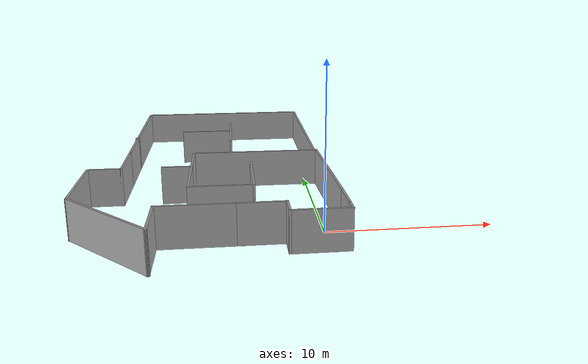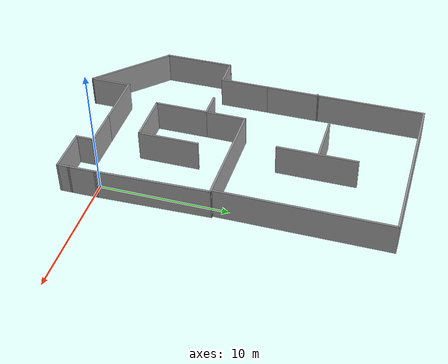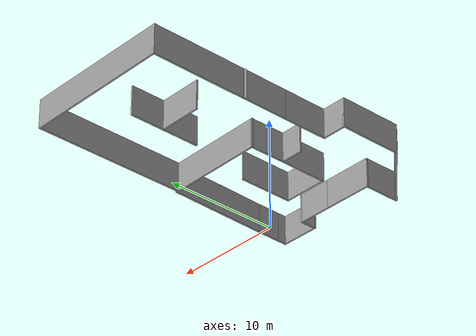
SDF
<?xml version='1.0'?>
<sdf version='1.7'>
  <model name='seminar_world'>
    <pose>-6.63188 8.85131 0 0 -0 0</pose>
    <link name='Wall_0'>
      <collision name='Wall_0_Collision'>
        <geometry>
          <box>
            <size>2.17037 0.15 2.5</size>
          </box>
        </geometry>
        <pose>0 0 1.25 0 -0 0</pose>
      </collision>
      <visual name='Wall_0_Visual'>
        <pose>0 0 1.25 0 -0 0</pose>
        <geometry>
          <box>
            <size>2.17037 0.15 2.5</size>
          </box>
        </geometry>
        <material>
          <script>
            <uri>file://media/materials/scripts/gazebo.material</uri>
            <name>Gazebo/Grey</name>
          </script>
          <ambient>1 1 1 1</ambient>
        </material>
        <meta>
          <layer>0</layer>
        </meta>
      </visual>
      <pose>7.69858 -9.62121 0 0 -0 -1.55763</pose>
    </link>
    <link name='Wall_10'>
      <collision name='Wall_10_Collision'>
        <geometry>
          <box>
            <size>2.25 0.15 2.5</size>
          </box>
        </geometry>
        <pose>0 0 1.25 0 -0 0</pose>
      </collision>
      <visual name='Wall_10_Visual'>
        <pose>0 0 1.25 0 -0 0</pose>
        <geometry>
          <box>
            <size>2.25 0.15 2.5</size>
          </box>
        </geometry>
        <material>
          <script>
            <uri>file://media/materials/scripts/gazebo.material</uri>
            <name>Gazebo/Grey</name>
          </script>
          <ambient>1 1 1 1</ambient>
        </material>
        <meta>
          <layer>0</layer>
        </meta>
      </visual>
      <pose>-6.6318 -3.03763 0 0 -0 0</pose>
    </link>
    <link name='Wall_13'>
      <collision name='Wall_13_Collision'>
        <geometry>
          <box>
            <size>2 0.15 2.5</size>
          </box>
        </geometry>
        <pose>0 0 1.25 0 -0 0</pose>
      </collision>
      <visual name='Wall_13_Visual'>
        <pose>0 0 1.25 0 -0 0</pose>
        <geometry>
          <box>
            <size>2 0.15 2.5</size>
          </box>
        </geometry>
        <material>
          <script>
            <uri>file://media/materials/scripts/gazebo.material</uri>
            <name>Gazebo/Grey</name>
          </script>
          <ambient>1 1 1 1</ambient>
        </material>
        <meta>
          <layer>0</layer>
        </meta>
      </visual>
      <pose>-2.09158 -2.99787 0 0 -0 0</pose>
    </link>
    <link name='Wall_14'>
      <collision name='Wall_14_Collision'>
        <geometry>
          <box>
            <size>3.25 0.15 2.5</size>
          </box>
        </geometry>
        <pose>0 0 1.25 0 -0 0</pose>
      </collision>
      <visual name='Wall_14_Visual'>
        <pose>0 0 1.25 0 -0 0</pose>
        <geometry>
          <box>
            <size>3.25 0.15 2.5</size>
          </box>
        </geometry>
        <material>
          <script>
            <uri>file://media/materials/scripts/gazebo.material</uri>
            <name>Gazebo/Grey</name>
          </script>
          <ambient>1 1 1 1</ambient>
        </material>
        <meta>
          <layer>0</layer>
        </meta>
      </visual>
      <pose>-1.15336 -1.44787 0 0 -0 1.56226</pose>
    </link>
    <link name='Wall_15'>
      <collision name='Wall_15_Collision'>
        <geometry>
          <box>
            <size>8.7234 0.15 2.5</size>
          </box>
        </geometry>
        <pose>0 0 1.25 0 -0 0</pose>
      </collision>
      <visual name='Wall_15_Visual'>
        <pose>0 0 1.25 0 -0 0</pose>
        <geometry>
          <box>
            <size>8.7234 0.15 2.5</size>
          </box>
        </geometry>
        <material>
          <script>
            <uri>file://media/materials/scripts/gazebo.material</uri>
            <name>Gazebo/Grey</name>
          </script>
          <ambient>1 1 1 1</ambient>
        </material>
        <meta>
          <layer>0</layer>
        </meta>
      </visual>
      <pose>3.13334 0.062229 0 0 -0 -0.009308</pose>
    </link>
    <link name='Wall_19'>
      <collision name='Wall_19_Collision'>
        <geometry>
          <box>
            <size>8.78751 0.15 2.5</size>
          </box>
        </geometry>
        <pose>0 0 1.25 0 -0 0</pose>
      </collision>
      <visual name='Wall_19_Visual'>
        <pose>0 0 1.25 0 -0 0</pose>
        <geometry>
          <box>
            <size>8.78751 0.15 2.5</size>
          </box>
        </geometry>
        <material>
          <script>
            <uri>file://media/materials/scripts/gazebo.material</uri>
            <name>Gazebo/Grey</name>
          </script>
          <ambient>1 1 1 1</ambient>
        </material>
        <meta>
          <layer>0</layer>
        </meta>
      </visual>
      <pose>7.55266 -4.26779 0 0 -0 1.60151</pose>
    </link>
    <link name='Wall_2'>
      <collision name='Wall_2_Collision'>
        <geometry>
          <box>
            <size>1 0.15 2.5</size>
          </box>
        </geometry>
        <pose>0 0 1.25 0 -0 0</pose>
      </collision>
      <visual name='Wall_2_Visual'>
        <pose>0 0 1.25 0 -0 0</pose>
        <geometry>
          <box>
            <size>1 0.15 2.5</size>
          </box>
        </geometry>
        <material>
          <script>
            <uri>file://media/materials/scripts/gazebo.material</uri>
            <name>Gazebo/Grey</name>
          </script>
          <ambient>1 1 1 1</ambient>
        </material>
        <meta>
          <layer>0</layer>
        </meta>
      </visual>
      <pose>7.71188 -11.0563 0 0 -0 -1.5708</pose>
    </link>
    <link name='Wall_21'>
      <collision name='Wall_21_Collision'>
        <geometry>
          <box>
            <size>4.25 0.15 2.5</size>
          </box>
        </geometry>
        <pose>0 0 1.25 0 -0 0</pose>
      </collision>
      <visual name='Wall_21_Visual'>
        <pose>0 0 1.25 0 -0 0</pose>
        <geometry>
          <box>
            <size>4.25 0.15 2.5</size>
          </box>
        </geometry>
        <material>
          <script>
            <uri>file://media/materials/scripts/gazebo.material</uri>
            <name>Gazebo/Grey</name>
          </script>
          <ambient>1 1 1 1</ambient>
        </material>
        <meta>
          <layer>0</layer>
        </meta>
      </visual>
      <pose>-1.16658 -5.04787 0 0 -0 -1.5708</pose>
    </link>
    <link name='Wall_22'>
      <collision name='Wall_22_Collision'>
        <geometry>
          <box>
            <size>4 0.15 2.5</size>
          </box>
        </geometry>
        <pose>0 0 1.25 0 -0 0</pose>
      </collision>
      <visual name='Wall_22_Visual'>
        <pose>0 0 1.25 0 -0 0</pose>
        <geometry>
          <box>
            <size>4 0.15 2.5</size>
          </box>
        </geometry>
        <material>
          <script>
            <uri>file://media/materials/scripts/gazebo.material</uri>
            <name>Gazebo/Grey</name>
          </script>
          <ambient>1 1 1 1</ambient>
        </material>
        <meta>
          <layer>0</layer>
        </meta>
      </visual>
      <pose>0.758417 -7.09787 0 0 -0 0</pose>
    </link>
    <link name='Wall_23'>
      <collision name='Wall_23_Collision'>
        <geometry>
          <box>
            <size>4.75 0.15 2.5</size>
          </box>
        </geometry>
        <pose>0 0 1.25 0 -0 0</pose>
      </collision>
      <visual name='Wall_23_Visual'>
        <pose>0 0 1.25 0 -0 0</pose>
        <geometry>
          <box>
            <size>4.75 0.15 2.5</size>
          </box>
        </geometry>
        <material>
          <script>
            <uri>file://media/materials/scripts/gazebo.material</uri>
            <name>Gazebo/Grey</name>
          </script>
          <ambient>1 1 1 1</ambient>
        </material>
        <meta>
          <layer>0</layer>
        </meta>
      </visual>
      <pose>2.68342 -4.79787 0 0 -0 1.5708</pose>
    </link>
    <link name='Wall_3'>
      <collision name='Wall_3_Collision'>
        <geometry>
          <box>
            <size>3.5 0.15 2.5</size>
          </box>
        </geometry>
        <pose>0 0 1.25 0 -0 0</pose>
      </collision>
      <visual name='Wall_3_Visual'>
        <pose>0 0 1.25 0 -0 0</pose>
        <geometry>
          <box>
            <size>3.5 0.15 2.5</size>
          </box>
        </geometry>
        <material>
          <script>
            <uri>file://media/materials/scripts/gazebo.material</uri>
            <name>Gazebo/Grey</name>
          </script>
          <ambient>1 1 1 1</ambient>
        </material>
        <meta>
          <layer>0</layer>
        </meta>
      </visual>
      <pose>6.03688 -11.4813 0 0 -0 3.14159</pose>
    </link>
    <link name='Wall_4'>
      <collision name='Wall_4_Collision'>
        <geometry>
          <box>
            <size>1.5 0.15 2.5</size>
          </box>
        </geometry>
        <pose>0 0 1.25 0 -0 0</pose>
      </collision>
      <visual name='Wall_4_Visual'>
        <pose>0 0 1.25 0 -0 0</pose>
        <geometry>
          <box>
            <size>1.5 0.15 2.5</size>
          </box>
        </geometry>
        <material>
          <script>
            <uri>file://media/materials/scripts/gazebo.material</uri>
            <name>Gazebo/Grey</name>
          </script>
          <ambient>1 1 1 1</ambient>
        </material>
        <meta>
          <layer>0</layer>
        </meta>
      </visual>
      <pose>4.36188 -10.8063 0 0 -0 1.5708</pose>
    </link>
    <link name='Wall_5'>
      <collision name='Wall_5_Collision'>
        <geometry>
          <box>
            <size>3 0.15 2.5</size>
          </box>
        </geometry>
        <pose>0 0 1.25 0 -0 0</pose>
      </collision>
      <visual name='Wall_5_Visual'>
        <pose>0 0 1.25 0 -0 0</pose>
        <geometry>
          <box>
            <size>3 0.15 2.5</size>
          </box>
        </geometry>
        <material>
          <script>
            <uri>file://media/materials/scripts/gazebo.material</uri>
            <name>Gazebo/Grey</name>
          </script>
          <ambient>1 1 1 1</ambient>
        </material>
        <meta>
          <layer>0</layer>
        </meta>
      </visual>
      <pose>2.93688 -10.1313 0 0 -0 3.14159</pose>
    </link>
    <link name='Wall_6'>
      <collision name='Wall_6_Collision'>
        <geometry>
          <box>
            <size>4.5 0.15 2.5</size>
          </box>
        </geometry>
        <pose>0 0 1.25 0 -0 0</pose>
      </collision>
      <visual name='Wall_6_Visual'>
        <pose>0 0 1.25 0 -0 0</pose>
        <geometry>
          <box>
            <size>4.5 0.15 2.5</size>
          </box>
        </geometry>
        <material>
          <script>
            <uri>file://media/materials/scripts/gazebo.material</uri>
            <name>Gazebo/Grey</name>
          </script>
          <ambient>1 1 1 1</ambient>
        </material>
        <meta>
          <layer>0</layer>
        </meta>
      </visual>
      <pose>-0.663116 -10.1313 0 0 -0 3.14159</pose>
    </link>
    <link name='Wall_7'>
      <collision name='Wall_7_Collision'>
        <geometry>
          <box>
            <size>3.25 0.15 2.5</size>
          </box>
        </geometry>
        <pose>0 0 1.25 0 -0 0</pose>
      </collision>
      <visual name='Wall_7_Visual'>
        <pose>0 0 1.25 0 -0 0</pose>
        <geometry>
          <box>
            <size>3.25 0.15 2.5</size>
          </box>
        </geometry>
        <material>
          <script>
            <uri>file://media/materials/scripts/gazebo.material</uri>
            <name>Gazebo/Grey</name>
          </script>
          <ambient>1 1 1 1</ambient>
        </material>
        <meta>
          <layer>0</layer>
        </meta>
      </visual>
      <pose>-2.83812 -11.6813 0 0 -0 -1.5708</pose>
    </link>
    <link name='Wall_76'>
      <collision name='Wall_76_Collision'>
        <geometry>
          <box>
            <size>4 0.15 2.5</size>
          </box>
        </geometry>
        <pose>0 0 1.25 0 -0 0</pose>
      </collision>
      <visual name='Wall_76_Visual'>
        <pose>0 0 1.25 0 -0 0</pose>
        <geometry>
          <box>
            <size>4 0.15 2.5</size>
          </box>
        </geometry>
        <material>
          <script>
            <uri>file://media/materials/scripts/gazebo.material</uri>
            <name>Gazebo/Grey</name>
          </script>
          <ambient>1 1 1 1</ambient>
        </material>
        <meta>
          <layer>0</layer>
        </meta>
      </visual>
      <pose>-5.5818 -1.11263 0 0 -0 1.5708</pose>
    </link>
    <link name='Wall_78'>
      <collision name='Wall_78_Collision'>
        <geometry>
          <box>
            <size>4.25 0.15 2.5</size>
          </box>
        </geometry>
        <pose>0 0 1.25 0 -0 0</pose>
      </collision>
      <visual name='Wall_78_Visual'>
        <pose>0 0 1.25 0 -0 0</pose>
        <geometry>
          <box>
            <size>4.25 0.15 2.5</size>
          </box>
        </geometry>
        <material>
          <script>
            <uri>file://media/materials/scripts/gazebo.material</uri>
            <name>Gazebo/Grey</name>
          </script>
          <ambient>1 1 1 1</ambient>
        </material>
        <meta>
          <layer>0</layer>
        </meta>
      </visual>
      <pose>-5.5818 2.86237 0 0 -0 1.5708</pose>
    </link>
    <link name='Wall_8'>
      <collision name='Wall_8_Collision'>
        <geometry>
          <box>
            <size>7 0.15 2.5</size>
          </box>
        </geometry>
        <pose>0 0 1.25 0 -0 0</pose>
      </collision>
      <visual name='Wall_8_Visual'>
        <pose>0 0 1.25 0 -0 0</pose>
        <geometry>
          <box>
            <size>7 0.15 2.5</size>
          </box>
        </geometry>
        <material>
          <script>
            <uri>file://media/materials/scripts/gazebo.material</uri>
            <name>Gazebo/Grey</name>
          </script>
          <ambient>1 1 1 1</ambient>
        </material>
        <meta>
          <layer>0</layer>
        </meta>
      </visual>
      <pose>-5.25996 -10.8095 0 0 -0 2.35619</pose>
    </link>
    <link name='Wall_80'>
      <collision name='Wall_80_Collision'>
        <geometry>
          <box>
            <size>0.282045 0.15 2.5</size>
          </box>
        </geometry>
        <pose>0 0 1.25 0 -0 0</pose>
      </collision>
      <visual name='Wall_80_Visual'>
        <pose>0 0 1.25 0 -0 0</pose>
        <geometry>
          <box>
            <size>0.282045 0.15 2.5</size>
          </box>
        </geometry>
        <material>
          <script>
            <uri>file://media/materials/scripts/gazebo.material</uri>
            <name>Gazebo/Grey</name>
          </script>
          <ambient>1 1 1 1</ambient>
        </material>
        <meta>
          <layer>0</layer>
        </meta>
      </visual>
      <pose>-5.6253 4.86271 0 0 -0 -2.29018</pose>
    </link>
    <link name='Wall_82'>
      <collision name='Wall_82_Collision'>
        <geometry>
          <box>
            <size>6.25 0.15 2.5</size>
          </box>
        </geometry>
        <pose>0 0 1.25 0 -0 0</pose>
      </collision>
      <visual name='Wall_82_Visual'>
        <pose>0 0 1.25 0 -0 0</pose>
        <geometry>
          <box>
            <size>6.25 0.15 2.5</size>
          </box>
        </geometry>
        <material>
          <script>
            <uri>file://media/materials/scripts/gazebo.material</uri>
            <name>Gazebo/Grey</name>
          </script>
          <ambient>1 1 1 1</ambient>
        </material>
        <meta>
          <layer>0</layer>
        </meta>
      </visual>
      <pose>1.43119 6.36305 0 0 -0 1.5708</pose>
    </link>
    <link name='Wall_87'>
      <collision name='Wall_87_Collision'>
        <geometry>
          <box>
            <size>8.5 0.15 2.5</size>
          </box>
        </geometry>
        <pose>0 0 1.25 0 -0 0</pose>
      </collision>
      <visual name='Wall_87_Visual'>
        <pose>0 0 1.25 0 -0 0</pose>
        <geometry>
          <box>
            <size>8.5 0.15 2.5</size>
          </box>
        </geometry>
        <material>
          <script>
            <uri>file://media/materials/scripts/gazebo.material</uri>
            <name>Gazebo/Grey</name>
          </script>
          <ambient>1 1 1 1</ambient>
        </material>
        <meta>
          <layer>0</layer>
        </meta>
      </visual>
      <pose>-5.5818 9.08737 0 0 -0 1.5708</pose>
    </link>
    <link name='Wall_88'>
      <collision name='Wall_88_Collision'>
        <geometry>
          <box>
            <size>13 0.15 2.5</size>
          </box>
        </geometry>
        <pose>0 0 1.25 0 -0 0</pose>
      </collision>
      <visual name='Wall_88_Visual'>
        <pose>0 0 1.25 0 -0 0</pose>
        <geometry>
          <box>
            <size>13 0.15 2.5</size>
          </box>
        </geometry>
        <material>
          <script>
            <uri>file://media/materials/scripts/gazebo.material</uri>
            <name>Gazebo/Grey</name>
          </script>
          <ambient>1 1 1 1</ambient>
        </material>
        <meta>
          <layer>0</layer>
        </meta>
      </visual>
      <pose>0.843202 13.2624 0 0 -0 0</pose>
    </link>
    <link name='Wall_89'>
      <collision name='Wall_89_Collision'>
        <geometry>
          <box>
            <size>13.25 0.15 2.5</size>
          </box>
        </geometry>
        <pose>0 0 1.25 0 -0 0</pose>
      </collision>
      <visual name='Wall_89_Visual'>
        <pose>0 0 1.25 0 -0 0</pose>
        <geometry>
          <box>
            <size>13.25 0.15 2.5</size>
          </box>
        </geometry>
        <material>
          <script>
            <uri>file://media/materials/scripts/gazebo.material</uri>
            <name>Gazebo/Grey</name>
          </script>
          <ambient>1 1 1 1</ambient>
        </material>
        <meta>
          <layer>0</layer>
        </meta>
      </visual>
      <pose>7.2682 6.71237 0 0 -0 -1.5708</pose>
    </link>
    <link name='Wall_9'>
      <collision name='Wall_9_Collision'>
        <geometry>
          <box>
            <size>5.5 0.15 2.5</size>
          </box>
        </geometry>
        <pose>0 0 1.25 0 -0 0</pose>
      </collision>
      <visual name='Wall_9_Visual'>
        <pose>0 0 1.25 0 -0 0</pose>
        <geometry>
          <box>
            <size>5.5 0.15 2.5</size>
          </box>
        </geometry>
        <material>
          <script>
            <uri>file://media/materials/scripts/gazebo.material</uri>
            <name>Gazebo/Grey</name>
          </script>
          <ambient>1 1 1 1</ambient>
        </material>
        <meta>
          <layer>0</layer>
        </meta>
      </visual>
      <pose>-7.6818 -5.71263 0 0 -0 1.5708</pose>
    </link>
    <link name='Wall_91'>
      <collision name='Wall_91_Collision'>
        <geometry>
          <box>
            <size>3.75 0.15 2.5</size>
          </box>
        </geometry>
        <pose>0 0 1.25 0 -0 0</pose>
      </collision>
      <visual name='Wall_91_Visual'>
        <pose>0 0 1.25 0 -0 0</pose>
        <geometry>
          <box>
            <size>3.75 0.15 2.5</size>
          </box>
        </geometry>
        <material>
          <script>
            <uri>file://media/materials/scripts/gazebo.material</uri>
            <name>Gazebo/Grey</name>
          </script>
          <ambient>1 1 1 1</ambient>
        </material>
        <meta>
          <layer>0</layer>
        </meta>
      </visual>
      <pose>-0.428544 6.46551 0 0 -0 3.14159</pose>
    </link>
    <static>1</static>
  </model>
</sdf>
